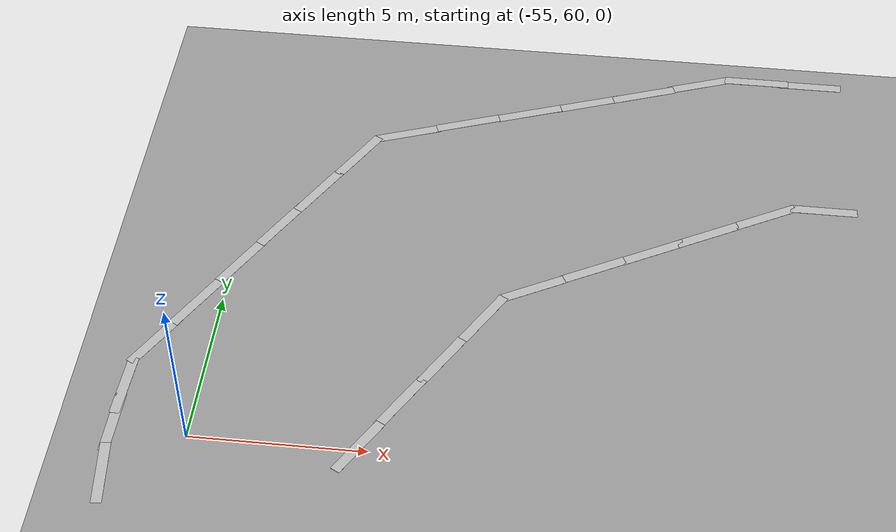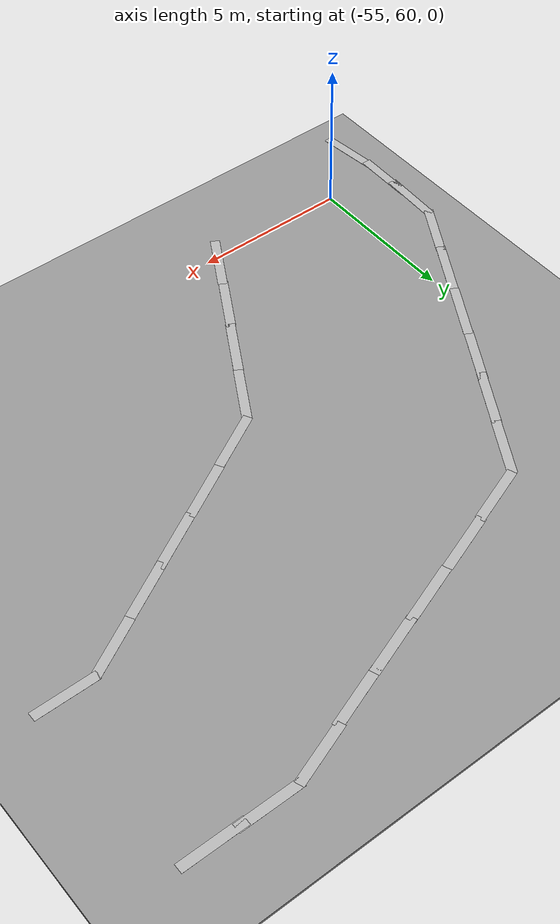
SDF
<sdf version="1.6">
 <world name="default">
  <model name="ground_plane">
   <pose>0 0 -1 0 -0 0</pose>
   <static>1</static>
   <link name="link">
    <collision name="collision">
     <geometry><plane><normal>0 0 1</normal><size>100 100</size></plane></geometry>
     <surface><friction><ode><mu>100</mu><mu2>50</mu2></ode></friction></surface>
    </collision>
    <visual name="visual">
     <cast_shadows>0</cast_shadows>
     <geometry><plane><normal>0 0 1</normal><size>100 100</size></plane></geometry>
     <material>
      <script><uri>file://media/materials/scripts/gazebo.material</uri><name>Gazebo/Grey</name></script>
     </material>
    </visual>
   </link>
  </model>
  <model name="ground_plane_2">
   <static>1</static>
   <link name="link">
    <collision name="collision">
     <geometry><plane><normal>0 0 1</normal><size>100 100</size></plane></geometry>
     <surface>
      <contact><collide_bitmask>65535</collide_bitmask></contact>
      <friction><ode><mu>100</mu><mu2>50</mu2></ode></friction>
     </surface>
    </collision>
    <visual name="visual">
     <cast_shadows>0</cast_shadows>
     <geometry><plane><normal>0 0 1</normal><size>100 100</size></plane></geometry>
     <material>
      <script><uri>file://media/materials/scripts/gazebo.material</uri><name>Gazebo/Grey</name></script>
     </material>
    </visual>
   </link>
   <pose>-52.3239 64.6612 -1 0 -0 0</pose>
  </model>
  <model name="serit_s_clone_0_clone_1_clone_0_clone_2_clone_2_clone_1_clone_0_clone_5_clone_2_clone_3_clone_6">
   <link name="body">
    <visual name="visual">
     <geometry><mesh><uri>file://serit.dae</uri></mesh></geometry>
     <material><shader type="pixel"/></material>
    </visual>
   </link>
   <static>1</static>
   <pose>-37.8387 70.4957 0 0 -0 1.56985</pose>
  </model>
  <model name="serit_s_clone_0_clone_1_clone_0_clone_2_clone_2_clone_1_clone_0_clone_5_clone_2_clone_3_clone_7">
   <link name="body">
    <visual name="visual">
     <geometry><mesh><uri>file://serit.dae</uri></mesh></geometry>
     <material><shader type="pixel"/></material>
    </visual>
   </link>
   <static>1</static>
   <pose>-39.5694 70.0442 0 0 -0 2.07183</pose>
  </model>
  <model name="serit_s_clone_0_clone_1_clone_0_clone_2_clone_2_clone_1_clone_0_clone_5_clone_2_clone_3_clone_7_clone">
   <link name="body">
    <visual name="visual">
     <geometry><mesh><uri>file://serit.dae</uri></mesh></geometry>
     <material><shader type="pixel"/></material>
    </visual>
   </link>
   <static>1</static>
   <pose>-41.258 69.1128 0 0 -0 2.07183</pose>
  </model>
  <model name="serit_s_clone_0_clone_1_clone_0_clone_2_clone_2_clone_1_clone_0_clone_5_clone_2_clone_3_clone_7_clone_0">
   <link name="body">
    <visual name="visual">
     <geometry><mesh><uri>file://serit.dae</uri></mesh></geometry>
     <material><shader type="pixel"/></material>
    </visual>
   </link>
   <static>1</static>
   <pose>-42.8268 68.2485 0 0 -0 2.07183</pose>
  </model>
  <model name="serit_s_clone_0_clone_1_clone_0_clone_2_clone_2_clone_1_clone_0_clone_5_clone_2_clone_3_clone_7_clone_1">
   <link name="body">
    <visual name="visual">
     <geometry><mesh><uri>file://serit.dae</uri></mesh></geometry>
     <material><shader type="pixel"/></material>
    </visual>
   </link>
   <static>1</static>
   <pose>-44.5107 67.3374 0 0 -0 2.07183</pose>
  </model>
  <model name="serit_s_clone_0_clone_1_clone_0_clone_2_clone_2_clone_1_clone_0_clone_5_clone_2_clone_3_clone_7_clone_2">
   <link name="body">
    <visual name="visual">
     <geometry><mesh><uri>file://serit.dae</uri></mesh></geometry>
     <material><shader type="pixel"/></material>
    </visual>
   </link>
   <static>1</static>
   <pose>-46.2041 66.3971 0 0 -0 2.07183</pose>
  </model>
  <model name="serit_s_clone_0_clone_1_clone_0_clone_2_clone_2_clone_1_clone_0_clone_5_clone_2_clone_3_clone_7_clone_3">
   <link name="body">
    <visual name="visual">
     <geometry><mesh><uri>file://serit.dae</uri></mesh></geometry>
     <material><shader type="pixel"/></material>
    </visual>
   </link>
   <static>1</static>
   <pose>-47.4848 65.1235 0 0 -0 2.62471</pose>
  </model>
  <model name="serit_s_clone_0_clone_1_clone_0_clone_2_clone_2_clone_1_clone_0_clone_5_clone_2_clone_3_clone_7_clone_3_clone">
   <link name="body">
    <visual name="visual">
     <geometry><mesh><uri>file://serit.dae</uri></mesh></geometry>
     <material><shader type="pixel"/></material>
    </visual>
   </link>
   <static>1</static>
   <pose>-48.4524 63.4414 0 0 -0 2.62471</pose>
  </model>
  <model name="serit_s_clone_0_clone_1_clone_0_clone_2_clone_2_clone_1_clone_0_clone_5_clone_2_clone_3_clone_7_clone_3_clone_0">
   <link name="body">
    <visual name="visual">
     <geometry><mesh><uri>file://serit.dae</uri></mesh></geometry>
     <material><shader type="pixel"/></material>
    </visual>
   </link>
   <static>1</static>
   <pose>-49.3984 61.813 0 0 -0 2.62471</pose>
  </model>
  <model name="serit_s_clone_0_clone_1_clone_0_clone_2_clone_2_clone_1_clone_0_clone_5_clone_2_clone_3_clone_7_clone_3_clone_1">
   <link name="body">
    <visual name="visual">
     <geometry><mesh><uri>file://serit.dae</uri></mesh></geometry>
     <material><shader type="pixel"/></material>
    </visual>
   </link>
   <static>1</static>
   <pose>-50.32 60.1561 0 0 -0 2.62471</pose>
  </model>
  <model name="serit_s_clone_0_clone_1_clone_0_clone_2_clone_2_clone_1_clone_0_clone_5_clone_2_clone_3_clone_6_clone">
   <link name="body">
    <visual name="visual">
     <geometry><mesh><uri>file://serit.dae</uri></mesh></geometry>
     <material><shader type="pixel"/></material>
    </visual>
   </link>
   <static>1</static>
   <pose>-38.3107 76.0394 0 0 -0 1.56985</pose>
  </model>
  <model name="serit_s_clone_0_clone_1_clone_0_clone_2_clone_2_clone_1_clone_0_clone_5_clone_2_clone_3_clone_6_clone_0">
   <link name="body">
    <visual name="visual">
     <geometry><mesh><uri>file://serit.dae</uri></mesh></geometry>
     <material><shader type="pixel"/></material>
    </visual>
   </link>
   <static>1</static>
   <pose>-39.974 76.0661 0 0 -0 1.56985</pose>
  </model>
  <model name="serit_s_clone_0_clone_1_clone_0_clone_2_clone_2_clone_1_clone_0_clone_5_clone_2_clone_3_clone_6_clone_0_clone">
   <link name="body">
    <visual name="visual">
     <geometry><mesh><uri>file://serit.dae</uri></mesh></geometry>
     <material><shader type="pixel"/></material>
    </visual>
   </link>
   <static>1</static>
   <pose>-41.7907 75.7386 0 0 -0 1.91886</pose>
  </model>
  <model name="serit_s_clone_0_clone_1_clone_0_clone_2_clone_2_clone_1_clone_0_clone_5_clone_2_clone_3_clone_6_clone_0_clone_clone">
   <link name="body">
    <visual name="visual">
     <geometry><mesh><uri>file://serit.dae</uri></mesh></geometry>
     <material><shader type="pixel"/></material>
    </visual>
   </link>
   <static>1</static>
   <pose>-43.5117 75.0792 0 0 -0 1.91886</pose>
  </model>
  <model name="serit_s_clone_0_clone_1_clone_0_clone_2_clone_2_clone_1_clone_0_clone_5_clone_2_clone_3_clone_6_clone_0_clone_clone_0">
   <link name="body">
    <visual name="visual">
     <geometry><mesh><uri>file://serit.dae</uri></mesh></geometry>
     <material><shader type="pixel"/></material>
    </visual>
   </link>
   <static>1</static>
   <pose>-45.2391 74.4608 0 0 -0 1.91886</pose>
  </model>
  <model name="serit_s_clone_0_clone_1_clone_0_clone_2_clone_2_clone_1_clone_0_clone_5_clone_2_clone_3_clone_6_clone_0_clone_clone_1">
   <link name="body">
    <visual name="visual">
     <geometry><mesh><uri>file://serit.dae</uri></mesh></geometry>
     <material><shader type="pixel"/></material>
    </visual>
   </link>
   <static>1</static>
   <pose>-47.0051 73.8335 0 0 -0 1.91886</pose>
  </model>
  <model name="serit_s_clone_0_clone_1_clone_0_clone_2_clone_2_clone_1_clone_0_clone_5_clone_2_clone_3_clone_6_clone_0_clone_clone_2">
   <link name="body">
    <visual name="visual">
     <geometry><mesh><uri>file://serit.dae</uri></mesh></geometry>
     <material><shader type="pixel"/></material>
    </visual>
   </link>
   <static>1</static>
   <pose>-48.8856 73.1706 0 0 -0 1.91886</pose>
  </model>
  <model name="serit_s_clone_0_clone_1_clone_0_clone_2_clone_2_clone_1_clone_0_clone_5_clone_2_clone_3_clone_6_clone_0_clone_clone_3">
   <link name="body">
    <visual name="visual">
     <geometry><mesh><uri>file://serit.dae</uri></mesh></geometry>
     <material><shader type="pixel"/></material>
    </visual>
   </link>
   <static>1</static>
   <pose>-50.6676 72.4994 0 0 -0 1.91886</pose>
  </model>
  <model name="serit_s_clone_0_clone_1_clone_0_clone_2_clone_2_clone_1_clone_0_clone_5_clone_2_clone_3_clone_7_clone_3_clone_3">
   <link name="body">
    <visual name="visual">
     <geometry><mesh><uri>file://serit.dae</uri></mesh></geometry>
     <material><shader type="pixel"/></material>
    </visual>
   </link>
   <static>1</static>
   <pose>-52.055 71.3511 0 0 -0 2.62471</pose>
  </model>
  <model name="serit_s_clone_0_clone_1_clone_0_clone_2_clone_2_clone_1_clone_0_clone_5_clone_2_clone_3_clone_7_clone_3_clone_4">
   <link name="body">
    <visual name="visual">
     <geometry><mesh><uri>file://serit.dae</uri></mesh></geometry>
     <material><shader type="pixel"/></material>
    </visual>
   </link>
   <static>1</static>
   <pose>-53.0189 69.6821 0 0 -0 2.62471</pose>
  </model>
  <model name="serit_s_clone_0_clone_1_clone_0_clone_2_clone_2_clone_1_clone_0_clone_5_clone_2_clone_3_clone_7_clone_3_clone_5">
   <link name="body">
    <visual name="visual">
     <geometry><mesh><uri>file://serit.dae</uri></mesh></geometry>
     <material><shader type="pixel"/></material>
    </visual>
   </link>
   <static>1</static>
   <pose>-53.8837 68.1851 0 0 -0 2.62471</pose>
  </model>
  <model name="serit_s_clone_0_clone_1_clone_0_clone_2_clone_2_clone_1_clone_0_clone_5_clone_2_clone_3_clone_7_clone_3_clone_6">
   <link name="body">
    <visual name="visual">
     <geometry><mesh><uri>file://serit.dae</uri></mesh></geometry>
     <material><shader type="pixel"/></material>
    </visual>
   </link>
   <static>1</static>
   <pose>-54.8102 66.527 0 0 -0 2.62471</pose>
  </model>
  <model name="serit_s_clone_0_clone_1_clone_0_clone_2_clone_2_clone_1_clone_0_clone_5_clone_2_clone_3_clone_7_clone_3_clone_7">
   <link name="body">
    <visual name="visual">
     <geometry><mesh><uri>file://serit.dae</uri></mesh></geometry>
     <material><shader type="pixel"/></material>
    </visual>
   </link>
   <static>1</static>
   <pose>-55.7506 64.8406 0 0 -0 2.62471</pose>
  </model>
  <model name="serit_s_clone_0_clone_1_clone_0_clone_2_clone_2_clone_1_clone_0_clone_5_clone_2_clone_3_clone_7_clone_3_clone_8">
   <link name="body">
    <visual name="visual">
     <geometry><mesh><uri>file://serit.dae</uri></mesh></geometry>
     <material><shader type="pixel"/></material>
    </visual>
   </link>
   <static>1</static>
   <pose>-56.6283 63.2723 0 0 -0 2.62471</pose>
  </model>
  <model name="serit_s_clone_0_clone_1_clone_0_clone_2_clone_2_clone_1_clone_0_clone_5_clone_2_clone_3_clone_7_clone_3_clone_9">
   <link name="body">
    <visual name="visual">
     <geometry><mesh><uri>file://serit.dae</uri></mesh></geometry>
     <material><shader type="pixel"/></material>
    </visual>
   </link>
   <static>1</static>
   <pose>-57.0936 61.5806 0 0 -0 3.09648</pose>
  </model>
  <model name="serit_s_clone_0_clone_1_clone_0_clone_2_clone_2_clone_1_clone_0_clone_5_clone_2_clone_3_clone_7_clone_3_clone_9_clone">
   <link name="body">
    <visual name="visual">
     <geometry><mesh><uri>file://serit.dae</uri></mesh></geometry>
     <material><shader type="pixel"/></material>
    </visual>
   </link>
   <static>1</static>
   <pose>-57.1077 60.2751 0 0 -0 3.12192</pose>
  </model>
  <model name="serit_s_clone_0_clone_1_clone_0_clone_2_clone_2_clone_1_clone_0_clone_5_clone_2_clone_3_clone_7_clone_3_clone_9_clone_0">
   <link name="body">
    <visual name="visual">
     <geometry><mesh><uri>file://serit.dae</uri></mesh></geometry>
     <material><shader type="pixel"/></material>
    </visual>
   </link>
   <static>1</static>
   <pose>-57.0056 58.545 0 0 0 -3.03001</pose>
  </model>
 </world>
</sdf>
